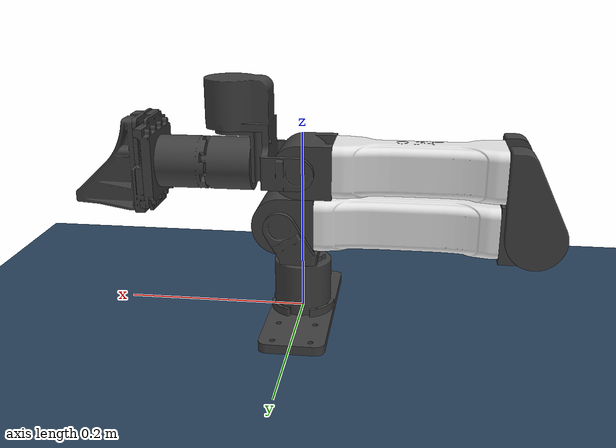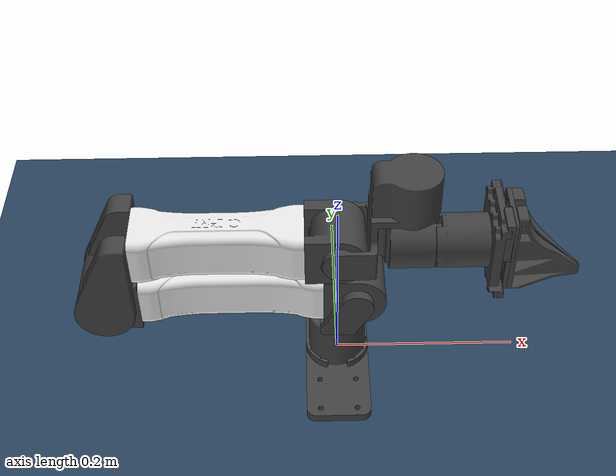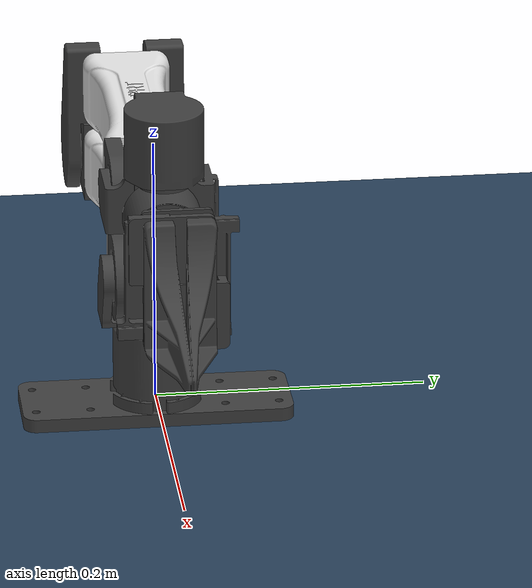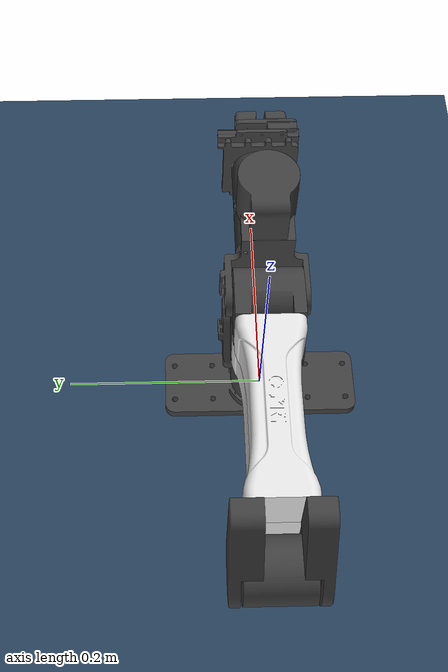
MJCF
<mujoco model="yam scene">
  <include file="yam.xml"/>

  <visual>
    <headlight diffuse="0.6 0.6 0.6" ambient="0.3 0.3 0.3" specular="0 0 0"/>
    <rgba haze="0.15 0.25 0.35 1"/>
    <global azimuth="140" elevation="-20"/>
  </visual>

  <asset>
    <texture type="skybox" builtin="gradient" rgb1="0.3 0.5 0.7" rgb2="0 0 0" width="512" height="3072"/>
    <texture type="2d" name="groundplane" builtin="checker" mark="edge" rgb1="0.2 0.3 0.4" rgb2="0.1 0.2 0.3"
      markrgb="0.8 0.8 0.8" width="300" height="300"/>
    <material name="groundplane" texture="groundplane" texuniform="true" texrepeat="5 5" reflectance="0.2"/>
  </asset>

  <worldbody>
    <light pos="0 0 1.5" dir="0 0 -1" directional="true"/>
    <geom name="floor" size="0 0 0.05" type="plane" material="groundplane" contype="1" pos="0 0 -0.01"/>
  </worldbody>
</mujoco>

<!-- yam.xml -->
<mujoco model="yam_v0">
  <compiler angle="radian" meshdir="assets"/>

  <option integrator="implicitfast"/>

  <default>
    <default class="yam">
      <position inheritrange="1"/>
      <joint frictionloss="0.1" axis="0 0 1"/>
      <default class="dm4340">
        <joint armature="0.032"/>
        <position kp="40" kv="2.5" forcerange="-28 28"/>
      </default>
      <default class="dm4310">
        <joint armature="0.0018"/>
        <position kp="10" kv="1" forcerange="-10 10"/>
      </default>
      <default class="visual">
        <geom type="mesh" contype="0" conaffinity="0" density="0" group="2" material="black"/>
      </default>
      <default class="collision">
        <geom group="3" type="capsule"/>
        <default class="sphere_collision">
          <geom size="0.0006 0 0" type="sphere" rgba="1 0 0 1"/>
        </default>
      </default>
      <default class="finger">
        <joint type="slide" armature="0.1" frictionloss="0.1"/>
        <position ctrlrange="0.0 0.041" kp="100" kv="10" inheritrange="0"/>
      </default>
    </default>
  </default>

  <asset>
    <material name="black" rgba="0.25 0.25 0.25 1"/>
    <material name="white" rgba="0.9 0.9 0.9 1"/>

    <mesh file="model2.stl"/>
    <mesh file="model2__2.stl"/>
    <mesh file="model2__3.stl"/>
    <mesh file="model2__4.stl"/>
    <mesh file="model2__5.stl"/>
    <mesh file="model2__6.stl"/>
    <mesh file="model2__7.stl"/>
    <mesh file="model2__8.stl"/>
    <mesh file="model2__9.stl"/>
    <mesh file="model2__10.stl"/>
    <mesh file="model2__11.stl"/>
    <mesh file="model2__12.stl"/>
    <mesh file="model2__13.stl"/>
    <mesh file="model2__14.stl"/>
    <mesh file="model2__15.stl"/>
    <mesh file="model2__16.stl"/>
    <mesh file="model2__17.stl"/>
  </asset>

  <worldbody>
    <light name="spotlight" mode="targetbodycom" target="link_6" pos="0 0 1"/>
    <body name="arm" childclass="yam">
      <geom class="visual" pos="0 0 -0.0006" quat="1 0 0 1" mesh="model2"/>
      <geom class="collision" size="0.033 0.01" pos="0.0 0.0 0.026" quat="1 0 0 0"/>
      <body name="link_1" pos="0 0 0.0631" quat="1 0 0 1">
        <inertial pos="-0.00192861 -0.00795735 0.0208176" quat="0.297851 0.642634 0.360045 0.607185" mass="0.12415"
          diaginertia="0.000180751 0.000145532 5.89179e-05"/>
        <joint name="joint1" range="-2.61799 3.05433" class="dm4340"/>
        <geom class="visual" pos="5.26159e-07 2.34355e-07 -0.0632" quat="1 0 0 0" mesh="model2__2"/>
        <body name="link_2" pos="2.5e-05 -0.02 0.0409" quat="1 1 1 1" gravcomp="1">
          <inertial pos="0.132008 2.10599e-06 0.000293073" quat="1 1 1 1" mass="1.24434"
            diaginertia="0.0121902 0.0121318 0.000683304"/>
          <joint name="joint2" range="0 3.66519" class="dm4340"/>
          <geom class="visual" pos="0.0199992 -0.1041 -2.44738e-05" quat="1 -1 -1 -1" mesh="model2__3"/>
          <geom class="visual" pos="0.0199992 -0.1041 -2.44738e-05" quat="1 -1 -1 -1" mesh="model2__4"/>
          <geom class="visual" pos="0.0199992 -0.1041 -2.44738e-05" quat="1 -1 -1 -1" mesh="model2__5"
            material="white"/>
          <geom class="collision" size="0.032 0.11" pos="0.13 0 0" quat="1 0 1 0"/>
          <geom class="collision" size="0.033 0.02" pos="0 0.0 0" quat="1 0 0 0"/>
          <geom class="collision" size="0.033 0.025" pos="0.265 0 0" quat="1 0 0 0"/>
          <body name="link_3" pos="0.264 0 0" quat="0 1 0 0" gravcomp="1">
            <inertial pos="-0.121816 -0.054846 -0.000111108" quat="1 1 1 1" mass="0.853698"
              diaginertia="0.00699732 0.00696112 0.000788244"/>
            <joint name="joint3" range="0 3.66519" class="dm4340"/>
            <geom class="visual" pos="-0.244001 0.104101 2.44738e-05" quat="1 1 1 -1" mesh="model2__6"/>
            <geom class="visual" pos="-0.244001 0.104101 2.44738e-05" quat="1 1 1 -1" mesh="model2__7"/>
            <geom class="visual" pos="-0.244001 0.104101 2.44738e-05" quat="1 1 1 -1" mesh="model2__8"
              material="white"/>
            <geom class="visual" pos="-0.244001 0.104101 2.44738e-05" quat="1 1 1 -1" mesh="model2__9"/>
            <geom class="collision" size="0.034 0.12" pos="-0.14 -0.06 0.0" quat="1 0 1 0"/>
            <geom class="collision" size="0.034 0.015" pos="-0.24 -0.06 0.0" quat="1 0 0 0"/>
            <body name="link_4" pos="-0.245 -0.06 0" quat="1 0 0 0" gravcomp="1">
              <inertial pos="-0.0769778 -0.0527104 0.000154878" quat="0.667 0.667 -0.236 -0.236" mass="0.463511"
                diaginertia="0.000791532 0.000744733 0.000282116"/>
              <joint name="joint4" range="-1.5708 1.5708" class="dm4310"/>
              <geom class="visual" pos="0.00100023 0.164101 2.44738e-05" quat="1 1 1 -1" mesh="model2__10"/>
              <geom class="collision" size="0.03 0.015" pos="-0.073 -0.06 0.0" quat="1 1 0 0"/>
              <body name="link_5" pos="-0.074 -0.0395 2.5e-05" quat="1 -1 1 1" gravcomp="1">
                <inertial pos="3.64861e-05 0.00025665 0.0353526" quat="1 0 0 0" mass="0.350962"
                  diaginertia="0.000197802 0.0001775 0.000147402"/>
                <joint name="joint5" range="-1.5708 1.5708" class="dm4310"/>
                <geom class="visual" pos="0 -0.0749971 0.203601" quat="1.32679e-06 1 0 0" mesh="model2__11"/>
                <geom class="collision" size="0.030 0.015" pos="0 0.025 0.0395" quat="1 1 0 0"/>
                <body name="link_6" pos="0 0.0353 0.0395" quat="1 -1 0 0" gravcomp="1">
                  <inertial pos="-0.000217767 7.37059e-05 0.0270545" quat="1 1 0 0" mass="0.367476"
                    diaginertia="0.000265958 0.000242686 0.000227409"/>
                  <joint name="joint6" range="-2.0944 2.0944" class="dm4310"/>
                  <geom class="visual" pos="0 -0.164101 -0.110597" quat="1 -1 0 0" mesh="model2__12"/>
                  <geom class="visual" pos="0 -0.164101 -0.110597" quat="1 -1 0 0" mesh="model2__13"/>
                  <geom class="collision" size="0.01 0.035" pos="0 0.039 0.052" quat="1 0 1 0"/>
                  <geom class="collision" size="0.030 0.005" pos="0 0.0 0.03" quat="1 0 0 1"/>
                  <geom class="collision" size="0.01 0.035" pos="0 -0.039 0.052" quat="1 0 1 0"/>
                  <site name="tcp_site" pos="0 0 0" quat="1 0 0 -1" size="0.005" rgba="1 0 0 1" group="4"/>
                  <site name="grasp_site" pos="0 0 0.1347" quat="1 0 0 -1" size="0.005" rgba="0 1 0 1" group="4"/>
                  <body name="link_left_finger" pos="-0.037 0.0392 0.0605" quat="1 0 1 0" gravcomp="1">
                    <inertial pos="-0.0192995 -0.0365902 0.039774" quat="0.757351 0.568898 -0.3199 0.0" mass="0.118"
                      diaginertia="0.000159084 0.000154909 4.63655e-05"/>
                    <joint class="finger" name="left_finger" range="-0.00205 0.037524"/>
                    <geom class="visual" pos="0.171097 -0.203301 0.037" quat="1 -1 -1 -1" mesh="model2__14"/>
                    <geom class="visual" pos="0.171097 -0.203301 0.037" quat="1 -1 -1 -1" mesh="model2__15"/>
                    <body name="lf_rot" quat="1 -1 -1 1" pos="0.0 -0.0392 0.037" gravcomp="1">
                      <geom class="collision" size="0.01 0.03" pos="0.0 -0.02 0.012" quat="1 0 1 0"
                        rgba="0.381493 0.492734 0.780446 1"/>
                      <geom class="collision" size="0.01 0.02" pos="-0.02 -0.01 0.032" quat="1 0 2.5 0"
                        rgba="0.381493 0.492734 0.780446 1"/>
                      <body name="lf_down" quat="1 0 0 0" pos="-0.044 0.0 0.0" gravcomp="1">
                        <geom class="collision" size="0.01 0.01" pos="0.0 -0.020 0.012" quat="1 -0.1 0 0"
                          rgba="0.381493 0.492734 0.780446 1"/>
                        <geom class="collision" size="0.003 0.022" pos="0.005 -0.014 0.04" quat="1 -0.2 0 0"
                          rgba="0.381493 0.492734 0.780446 1"/>
                        <geom class="collision" size="0.003 0.022" pos="-0.005 -0.014 0.04" quat="1 -0.2 0 0"
                          rgba="0.381493 0.492734 0.780446 1"/>
                        <geom class="collision" type="box" size="0.006 0.002 0.04" pos="0 -0.0024 0.046" quat="1 0 0 0"
                          rgba="0.381493 0.492734 0.780446 1"/>
                        <geom class="collision" type="box" size="0.006 0.002 0.039" pos="0.027 -0.0024 0.053"
                          quat="1 0 2.5 0" rgba="0.381493 0.492734 0.780446 1"/>
                        <geom class="sphere_collision" pos="0.003 -0.0004 0.078"/>
                        <geom class="sphere_collision" pos="-0.003 -0.0004 0.078"/>
                        <geom class="sphere_collision" pos="0.003 -0.0004 0.07"/>
                        <geom class="sphere_collision" pos="-0.003 -0.0004 0.07"/>
                        <geom class="sphere_collision" pos="0.003 -0.0004 0.06"/>
                        <geom class="sphere_collision" pos="-0.003 -0.0004 0.06"/>
                      </body>
                    </body>
                  </body>
                  <body name="link_right_finger" pos="0.037 -0.0392 0.0605" quat="1 0 1 0" gravcomp="1">
                    <inertial pos="-0.0192995 0.0365902 -0.039774" quat="-0.757351 0.568898 -0.3199 0" mass="0.118"
                      diaginertia="0.000159084 0.000154909 4.63655e-05"/>
                    <joint class="finger" name="right_finger" range="-0.037524 0.00205"/>
                    <geom class="visual" pos="0.171097 -0.124901 -0.037" quat="1 -1 -1 -1" mesh="model2__16"/>
                    <geom class="visual" pos="0.171097 -0.124901 -0.037" quat="1 -1 -1 -1" mesh="model2__17"/>
                    <body name="rf_rot" quat="1 1 -1 -1" pos="0.0 0.0392 -0.037" gravcomp="1">
                      <geom class="collision" size="0.01 0.03" pos="0.0 -0.02 0.012" quat="1 0 1 0"
                        rgba="0.381493 0.492734 0.780446 1"/>
                      <geom class="collision" size="0.01 0.02" pos="0.02 -0.01 0.032" quat="1 0 -2.5 0"
                        rgba="0.381493 0.492734 0.780446 1"/>
                      <body name="rf_down" quat="1 0 0 0" pos="0.044 0.0 0.0" gravcomp="1">
                        <geom class="collision" size="0.01 0.01" pos="0.0 -0.020 0.012" quat="1 -0.1 0 0"
                          rgba="0.381493 0.492734 0.780446 1"/>
                        <geom class="collision" size="0.003 0.022" pos="0.005 -0.014 0.04" quat="1 -0.2 0 0"
                          rgba="0.381493 0.492734 0.780446 1"/>
                        <geom class="collision" size="0.003 0.022" pos="-0.005 -0.014 0.04" quat="1 -0.2 0 0"
                          rgba="0.381493 0.492734 0.780446 1"/>
                        <geom class="collision" type="box" size="0.006 0.002 0.04" pos="0 -0.0024 0.046" quat="1 0 0 0"
                          rgba="0.381493 0.492734 0.780446 1"/>
                        <geom class="collision" type="box" size="0.006 0.002 0.039" pos="-0.027 -0.0024 0.053"
                          quat="1 0 -2.5 0" rgba="0.381493 0.492734 0.780446 1"/>
                        <geom class="sphere_collision" pos="0.003 -0.0004 0.078"/>
                        <geom class="sphere_collision" pos="-0.003 -0.0004 0.078"/>
                        <geom class="sphere_collision" pos="0.003 -0.0004 0.07"/>
                        <geom class="sphere_collision" pos="-0.003 -0.0004 0.07"/>
                        <geom class="sphere_collision" pos="0.003 -0.0004 0.06"/>
                        <geom class="sphere_collision" pos="-0.003 -0.0004 0.06"/>
                      </body>
                    </body>
                  </body>
                </body>
              </body>
            </body>
          </body>
        </body>
      </body>
    </body>
  </worldbody>

  <equality>
    <joint joint1="left_finger" joint2="right_finger" polycoef="0 -1 0 0 0"/>
  </equality>

  <actuator>
    <position name="joint1" joint="joint1" class="dm4340"/>
    <position name="joint2" joint="joint2" class="dm4340"/>
    <position name="joint3" joint="joint3" class="dm4340"/>
    <position name="joint4" joint="joint4" class="dm4310" kp="20" kv=".5"/>
    <position name="joint5" joint="joint5" class="dm4310"/>
    <position name="joint6" joint="joint6" class="dm4310"/>
    <position class="finger" name="gripper" joint="left_finger"/>
  </actuator>

  <keyframe>
    <key name="home" qpos="0 1.047 1.047 0 0 0 0 0" ctrl="0 1.047 1.047 0 0 0 0"/>
  </keyframe>
</mujoco>
